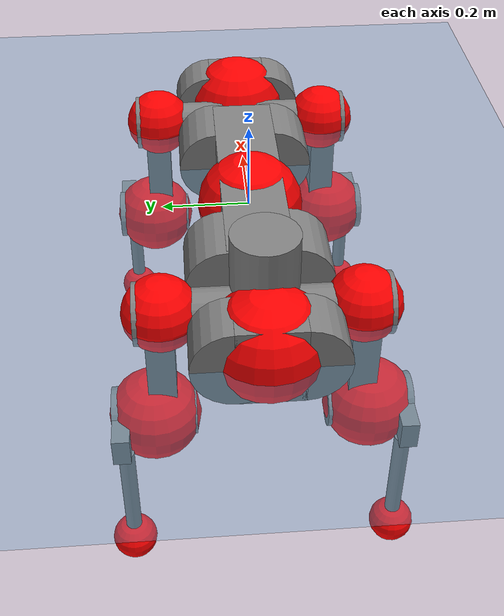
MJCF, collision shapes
<mujoco model="anymal_c">
  <compiler angle="radian" assetdir="assets" balanceinertia="true" inertiafromgeom="false"/>

  <option timestep="0.005" density="1.2" viscosity="2e-05"/>

  <size nkey="1"/>

  <visual>
    <quality shadowsize="8192"/>
    <map shadowclip="0.5"/>
  </visual>

  <default>
    <default class="/">
      <material specular="0" shininess="0.25"/>
      <geom contype="0" conaffinity="0" group="1" solref="-1000 -80"/>
      <site size="0.01 0.005 0.005" group="5"/>
      <general forcelimited="true" forcerange="-80 80" biastype="affine" gainprm="80" biasprm="0 -80 -2"/>
      <default class="anymal_c">
        <joint armature="0.01" damping="0.01" frictionloss="0.1"/>
        <default class="visual">
          <geom type="mesh" group="2"/>
          <default class="visual_zflip"/>
        </default>
        <default class="collision">
          <geom type="cylinder" group="3"/>
          <default class="foot">
            <geom size="0.03 0 0" type="sphere" condim="6" priority="1" friction="0.8 0.02 0.01" solimp="0.015 1 0.03"/>
          </default>
        </default>
      </default>
      <default class="reward_collision_sphere">
        <geom group="5" rgba="1 0 0 1"/>
      </default>
    </default>
  </default>

  <asset>
    <texture type="skybox" colorspace="auto" name="//unnamed_texture_0" builtin="gradient" rgb1="0.95 0.95 0.95" rgb2="0.95 0.95 0.95" width="100" height="600"/>
    <texture type="2d" colorspace="auto" name="texplane" builtin="checker" rgb1="0.345 0.575 0.748" rgb2="0.345 0.575 0.748" markrgb="1 1 1" width="512" height="512"/>
    <texture type="2d" colorspace="linear" name="base" file="base.png"/>
    <texture type="2d" colorspace="linear" name="top_shell" file="top_shell.png"/>
    <texture type="2d" colorspace="linear" name="bottom_shell" file="bottom_shell.png"/>
    <texture type="2d" colorspace="linear" name="remote" file="remote.png"/>
    <texture type="2d" colorspace="linear" name="hatch" file="hatch.png"/>
    <texture type="2d" colorspace="linear" name="handle" file="handle.png"/>
    <texture type="2d" colorspace="linear" name="face" file="face.png"/>
    <texture type="2d" colorspace="linear" name="battery" file="battery.png"/>
    <texture type="2d" colorspace="linear" name="lidar_cage" file="lidar_cage.png"/>
    <texture type="2d" colorspace="linear" name="depth_camera" file="depth_camera.png"/>
    <texture type="2d" colorspace="linear" name="wide_angle_camera" file="wide_angle_camera.png"/>
    <texture type="2d" colorspace="linear" name="lidar" file="lidar.png"/>
    <texture type="2d" colorspace="linear" name="drive" file="drive.png"/>
    <texture type="2d" colorspace="linear" name="hip_l" file="hip_l.png"/>
    <texture type="2d" colorspace="linear" name="shank_l" file="shank_l.png"/>
    <texture type="2d" colorspace="linear" name="foot" file="foot.png"/>
    <texture type="2d" colorspace="linear" name="thigh" file="thigh.png"/>
    <texture type="2d" colorspace="linear" name="shank_r" file="shank_r.png"/>
    <texture type="2d" colorspace="linear" name="hip_r" file="hip_r.png"/>
    <material name="MatPlane" class="/" texture="texplane" texuniform="true" texrepeat="2 2" specular="0.9" shininess="0.5"/>
    <material name="black_plastic" class="/" rgba="0.007 0.007 0.007 1"/>
    <material name="green" class="/" rgba="0.052 0.178 0.033 1"/>
    <material name="red" class="/" rgba="0.178 0.006 0.005 1"/>
    <material name="yellow" class="/" rgba="0.178 0.119 0.006 1"/>
    <material name="lwl" class="/" rgba="0.8 0.8 0.8 1"/>
    <material name="base" class="/" texture="base"/>
    <material name="top_shell" class="/" texture="top_shell"/>
    <material name="bottom_shell" class="/" texture="bottom_shell"/>
    <material name="hip_l" class="/" texture="hip_l"/>
    <material name="thigh" class="/" texture="thigh"/>
    <material name="shank_l" class="/" texture="shank_l"/>
    <material name="foot" class="/" texture="foot"/>
    <material name="hip_r" class="/" texture="hip_r"/>
    <material name="shank" class="/" texture="shank_r"/>
    <material name="hatch" class="/" texture="hatch"/>
    <material name="remote" class="/" texture="remote"/>
    <material name="handle" class="/" texture="handle"/>
    <material name="face" class="/" texture="face"/>
    <material name="depth_camera" class="/" texture="depth_camera"/>
    <material name="wide_angle_camera" class="/" texture="wide_angle_camera"/>
    <material name="battery" class="/" texture="battery"/>
    <material name="lidar_cage" class="/" texture="lidar_cage"/>
    <material name="lidar" class="/" texture="lidar"/>
    <material name="drive" class="/" texture="drive"/>
    <mesh name="base_0" class="/" file="base_0.obj"/>
    <mesh name="base_1" class="/" file="base_1.obj"/>
    <mesh name="base_2" class="/" file="base_2.obj"/>
    <mesh name="base_3" class="/" file="base_3.obj"/>
    <mesh name="base_4" class="/" file="base_4.obj"/>
    <mesh name="base_5" class="/" file="base_5.obj"/>
    <mesh name="top_shell" class="/" file="top_shell.obj"/>
    <mesh name="bottom_shell" class="/" file="bottom_shell.obj"/>
    <mesh name="remote" class="/" file="remote.obj"/>
    <mesh name="handle" class="/" file="handle.obj"/>
    <mesh name="face" class="/" file="face.obj"/>
    <mesh name="wide_angle_camera" class="/" file="wide_angle_camera.obj"/>
    <mesh name="depth_camera" class="/" file="depth_camera.obj"/>
    <mesh name="battery" class="/" file="battery.obj"/>
    <mesh name="lidar_cage" class="/" file="lidar_cage.obj"/>
    <mesh name="lidar" class="/" file="lidar.obj"/>
    <mesh name="drive" class="/" file="drive.obj"/>
    <mesh name="hip_l" class="/" file="hip_l.obj"/>
    <mesh name="thigh" class="/" file="thigh.obj"/>
    <mesh name="shank_l" class="/" file="shank_l.obj"/>
    <mesh name="foot" class="/" file="foot.obj"/>
    <mesh name="hip_r" class="/" file="hip_r.obj"/>
    <mesh name="hatch" class="/" file="hatch.obj"/>
    <mesh name="shank_r" class="/" file="shank_r.obj"/>
  </asset>

  <worldbody>
    <geom name="floor" class="/" size="100 100 0.125" type="plane" group="0" material="MatPlane"/>
    <light name="toplight_shadow" class="/" pos="0 0 5" dir="0.0990148 0.0990148 -0.990148" type="directional" ambient="0.04 0.04 0.04" diffuse="0.55 0.55 0.55" specular="0.12 0.12 0.12"/>
    <light name="toplight_fill" class="/" pos="0 0 5" dir="0.0990148 0.0990148 -0.990148" type="directional" castshadow="false" ambient="0.04 0.04 0.04" diffuse="0.3 0.3 0.3" specular="0.08 0.08 0.08"/>
    <body name="trunk" childclass="anymal_c" pos="-0.000524241 -0.00264114 -0.000260968" quat="0.999999 0.00019948 -0.00110752 -0.000703966">
      <inertial pos="8.99891e-05 -0.00211799 0.0528178" quat="0.492489 0.50725 0.498077 0.502067" mass="20.2665" diaginertia="0.775138 0.540443 0.248604"/>
      <joint name="//unnamed_joint_0" type="free" armature="0" damping="0" frictionloss="0"/>
      <geom name="//unnamed_geom_1" class="visual" material="green" mesh="base_0"/>
      <geom name="//unnamed_geom_2" class="visual" material="yellow" mesh="base_1"/>
      <geom name="//unnamed_geom_3" class="visual" material="red" mesh="base_2"/>
      <geom name="//unnamed_geom_4" class="visual" material="black_plastic" mesh="base_3"/>
      <geom name="//unnamed_geom_5" class="visual" material="lwl" mesh="base_4"/>
      <geom name="//unnamed_geom_6" class="visual" material="base" mesh="base_5"/>
      <geom name="trunk_1" class="collision" size="0.294629 0.0711173 0.0914365" type="box"/>
      <geom name="trunk_2" class="collision" size="0.0914365 0.0736572" pos="0.228305 0.0681129 0" quat="0.707107 0 0.707107 0"/>
      <geom name="trunk_3" class="collision" size="0.0914365 0.0736572" pos="-0.228305 0.0681129 0" quat="0.707107 0 0.707107 0"/>
      <geom name="trunk_4" class="collision" size="0.0914365 0.0736572" pos="0.228305 -0.0681129 0" quat="0.707107 0 0.707107 0"/>
      <geom name="trunk_5" class="collision" size="0.0914365 0.0736572" pos="-0.228305 -0.0681129 0" quat="0.707107 0 0.707107 0"/>
      <geom name="//unnamed_geom_12" class="visual" material="top_shell" mesh="top_shell"/>
      <geom name="//unnamed_geom_13" class="visual" material="bottom_shell" mesh="bottom_shell"/>
      <geom name="//unnamed_geom_14" class="visual" material="remote" mesh="remote"/>
      <geom name="//unnamed_geom_15" class="visual" material="handle" mesh="handle"/>
      <geom name="//unnamed_geom_16" class="visual" pos="0.435092 0 0" quat="1 0 0 0" material="face" mesh="face"/>
      <geom name="trunk_6" class="collision" size="0.0558779 0.0711173 0.0914365" pos="0.492824 0 0" type="box"/>
      <geom name="//unnamed_geom_18" class="collision" size="0.0914365 0.0558779" pos="0.492824 0.0681129 0" quat="0.707107 0 0.707107 0"/>
      <geom name="//unnamed_geom_19" class="collision" size="0.0914365 0.0558779" pos="0.492824 -0.0681129 0" quat="0.707107 0 0.707107 0"/>
      <geom name="//unnamed_geom_20" class="visual" pos="0.484583 0 -0.0297485" quat="0.965926 0 0.258819 0" material="depth_camera" mesh="depth_camera"/>
      <geom name="//unnamed_geom_21" class="visual" pos="0.538485 0 0.0153467" material="wide_angle_camera" mesh="wide_angle_camera"/>
      <geom name="//unnamed_geom_22" class="visual_zflip" pos="-0.435092 0 0" quat="0 0 0 1" material="face" mesh="face"/>
      <geom name="trunk_7" class="collision" size="0.0558779 0.0711173 0.0914365" pos="-0.492824 0 0" quat="0 0 0 1" type="box"/>
      <geom name="//unnamed_geom_24" class="collision" size="0.0914365 0.0558779" pos="-0.492824 -0.0681129 0" quat="0 -0.707107 0 0.707107"/>
      <geom name="//unnamed_geom_25" class="collision" size="0.0914365 0.0558779" pos="-0.492824 0.0681129 0" quat="0 -0.707107 0 0.707107"/>
      <geom name="//unnamed_geom_26" class="visual" pos="-0.484583 0 -0.0297485" quat="0 -0.258819 0 0.965926" material="depth_camera" mesh="depth_camera"/>
      <geom name="//unnamed_geom_27" class="visual_zflip" pos="-0.538485 0 0.0153467" quat="0 0 0 1" material="wide_angle_camera" mesh="wide_angle_camera"/>
      <geom name="//unnamed_geom_28" class="visual" material="battery" mesh="battery"/>
      <geom name="//unnamed_geom_29" class="visual" pos="0 0.073392 0.0299673" quat="0.683013 -0.183013 0.183013 0.683013" material="depth_camera" mesh="depth_camera"/>
      <geom name="//unnamed_geom_30" class="visual" pos="0 -0.073392 0.0299673" quat="0.683013 0.183013 0.183013 -0.683013" material="depth_camera" mesh="depth_camera"/>
      <geom name="//unnamed_geom_31" class="visual" pos="-0.382083 0 0.0753496" quat="1 0 0 0" material="lidar_cage" mesh="lidar_cage"/>
      <geom name="trunk_8" class="collision" size="0.0711173 0.0609577" pos="-0.382083 0 0.136859"/>
      <geom name="//unnamed_geom_33" class="visual" pos="-0.382083 -3.01087e-05 0.145778" quat="0.707107 0 0 -0.707107" material="lidar" mesh="lidar"/>
      <geom name="//unnamed_geom_34" class="visual" pos="0.314798 0.101215 -8.99138e-10" quat="0.258819 0.965926 0 0" material="drive" mesh="drive"/>
      <geom name="//unnamed_geom_35" class="visual" pos="0.314798 -0.101215 8.99138e-10" quat="0.258819 -0.965926 0 0" material="drive" mesh="drive"/>
      <geom name="//unnamed_geom_36" class="visual" pos="-0.314798 0.101215 8.99138e-10" quat="0 0 0.965926 -0.258819" material="drive" mesh="drive"/>
      <geom name="//unnamed_geom_37" class="visual" pos="-0.314798 -0.101215 -8.99138e-10" quat="0 0 -0.965926 -0.258819" material="drive" mesh="drive"/>
      <geom name="//unnamed_geom_38" class="visual" pos="0.121763 0 0.074837" quat="1 0 0 0" material="hatch" mesh="hatch"/>
      <geom name="//unnamed_geom_39" class="reward_collision_sphere" size="0.121915"/>
      <geom name="//unnamed_geom_40" class="reward_collision_sphere" size="0.121915" pos="0.472355 0 0"/>
      <geom name="//unnamed_geom_41" class="reward_collision_sphere" size="0.121915" pos="-0.472355 0 0"/>
      <site name="imu" pos="0.265955 0.0060411 0.0454436" size="0.0101596"/>
      <camera name="track" pos="0 -1.94608 0" quat="0.707107 0.707107 0 0" mode="trackcom"/>
      <camera name="ego_camera" pos="0.472355 0 -0.0410066" quat="-0.5 -0.5 0.5 0.5"/>
      <body name="LF_HIP" pos="0.31399 0.101565 0.000662254" quat="0.258559 0.965996 -0.000217911 4.92267e-05">
        <inertial pos="0.0594144 -0.0174333 -0.00823273" quat="-0.129811 0.712443 -0.141315 0.674985" mass="2.90089" diaginertia="0.00744689 0.00416539 0.00370196"/>
        <joint name="LF_HAA" pos="0 0 0" axis="0.99997 -0.00520633 0.00570307" stiffness="0.00564048" range="-0.758397 0.508428" armature="0.0101961" damping="0.00926915" frictionloss="0.0989352"/>
        <geom name="//unnamed_geom_42" class="visual" pos="0 -5.28922e-05 8.6875e-06" quat="0.258819 -0.965926 0 0" material="hip_l" mesh="hip_l"/>
        <geom name="//unnamed_geom_43" class="visual" pos="0.0628757 -0.0751968 -0.0438004" quat="0.183013 -0.683013 0.683013 0.183013" material="drive" mesh="drive"/>
        <geom name="//unnamed_geom_44" class="collision" size="0.0507981 0.0711173" pos="0.0628757 -0.0116374 -0.00707876" quat="-0.353553 -0.612372 0.612372 -0.353553"/>
        <body name="LF_THIGH" pos="0.0659585 -0.0689759 -0.0426057" quat="0.182647 -0.683496 0.682487 0.183533">
          <inertial pos="0.031985 0.0020357 -0.250802" quat="0.993006 -4.6834e-05 -0.0828605 0.0841033" mass="3.32103" diaginertia="0.0374786 0.026957 0.00475543"/>
          <joint name="LF_HFE" pos="0 0 0" axis="0.999901 0.0140405 0.00106015" stiffness="0.00763172" range="-3.19849 3.08917" armature="0.0111794" damping="0.00205515" frictionloss="0.0905444"/>
          <geom name="//unnamed_geom_45" class="visual" pos="0.00152478 2.4027e-06 0" quat="0.707107 0 0 -0.707107" material="thigh" mesh="thigh"/>
          <geom name="//unnamed_geom_46" class="collision" size="0.0660375 0.0406384" pos="0.0419871 0 0" quat="0.5 0.5 -0.5 -0.5"/>
          <geom name="//unnamed_geom_47" class="collision" size="0.0380985 0.0304788 0.14357" pos="0.0314903 0 -0.14487" quat="0.707107 0 0 -0.707107" type="box"/>
          <geom name="//unnamed_geom_48" class="visual" pos="0.105283 0 -0.292172" quat="1 0 0 0" material="drive" mesh="drive"/>
          <geom name="//unnamed_geom_49" class="collision" size="0.0507981 0.0711173" pos="0.0318052 0 -0.292172" quat="0.707107 0 0.707107 0"/>
          <geom name="//unnamed_geom_50" class="reward_collision_sphere" size="0.0812769" pos="0.026242 0 0"/>
          <body name="LF_SHANK" pos="0.104786 -0.000769786 -0.290231" quat="1 2.59488e-05 0.00047561 7.35474e-05">
            <inertial pos="0.00306347 -0.0620251 -0.0855412" quat="0.992968 -0.116271 0.000781965 -0.0222645" mass="0.601915" diaginertia="0.0125229 0.00804796 0.00124211"/>
            <joint name="LF_KFE" pos="0 0 0" axis="0.999998 -0.00120106 0.00142394" stiffness="0.00492006" range="-3.10039 3.19613" armature="0.00899581" damping="0" frictionloss="0.103791"/>
            <geom name="//unnamed_geom_51" class="visual" pos="0.000497198 0.00265108 0" quat="0.707107 0 0 -0.707107" material="shank_l" mesh="shank_l"/>
            <geom name="LF_kfe_act" class="collision" size="0.0609577 0.0203192" pos="0.0209936 0 0" quat="0.5 0.5 -0.5 -0.5"/>
            <geom name="//unnamed_geom_53" class="collision" size="0.0584167 0.0342887 0.0193033" pos="0.0209936 -0.0559489 0" quat="0.5 0.5 -0.5 -0.5" type="box"/>
            <geom name="//unnamed_geom_54" class="visual" pos="0.0136982 -0.0847246 -0.346475" quat="0.382683 0 0 -0.92388" material="foot" mesh="foot"/>
            <geom name="LF_calf" class="collision" size="0.0177793 0.143507" pos="0.0136983 -0.0855789 -0.173237" quat="0.707107 0 0 -0.707107"/>
            <geom name="LF_foot" class="foot" size="0.0296886" pos="0.0136983 -0.0855789 -0.323409" quat="0.707107 0 0 -0.707107"/>
            <geom name="//unnamed_geom_57" class="reward_collision_sphere" size="0.101596" pos="-0.0524839 0 0"/>
            <geom name="//unnamed_geom_58" class="reward_collision_sphere" size="0.0507981" pos="0.0136983 -0.0855789 -0.323409"/>
            <site name="LF_foot" class="foot" pos="0.0136983 -0.0855789 -0.323409" quat="0.707107 0 0 -0.707107" size="0.0101596"/>
          </body>
        </body>
      </body>
      <body name="RF_HIP" pos="0.313025 -0.103459 -0.000774771" quat="0.258817 -0.965926 5.06509e-06 -1.349e-06">
        <inertial pos="0.0606689 0.0165502 -0.00999867" quat="0.130383 0.683628 0.137815 0.704741" mass="2.89819" diaginertia="0.00725334 0.00429504 0.00377808"/>
        <joint name="RF_HAA" pos="0 0 0" axis="0.999912 0.00621428 -0.0117007" range="-0.508449 0.776962" armature="0.00938905" damping="0.00346591" frictionloss="0.101574"/>
        <geom name="//unnamed_geom_59" class="visual" pos="0 5.28918e-05 8.68748e-06" quat="0.258819 0.965926 0 0" material="hip_r" mesh="hip_r"/>
        <geom name="//unnamed_geom_60" class="visual" pos="0.0628757 0.0751968 -0.0438004" quat="0.183013 0.683013 0.683013 -0.183013" material="drive" mesh="drive"/>
        <geom name="//unnamed_geom_61" class="collision" size="0.0507981 0.0711173" pos="0.0628757 0.0116374 -0.00707876" quat="-0.353553 0.612372 0.612372 0.353553"/>
        <body name="RF_THIGH" pos="0.0620848 0.0708396 -0.0448027" quat="0.183118 0.682798 0.683198 -0.183018">
          <inertial pos="0.0343652 -0.00268066 -0.249272" quat="0.99297 -0.00808885 -0.0792063 0.0875881" mass="3.23557" diaginertia="0.0374262 0.0261458 0.00475191"/>
          <joint name="RF_HFE" pos="0 0 0" axis="0.999965 0.00743021 0.00396002" stiffness="0.00868538" range="-3.14958 3.15269" armature="0.00892729" damping="0.0242423" frictionloss="0.0890241"/>
          <geom name="//unnamed_geom_62" class="visual" pos="0.00152478 2.4027e-06 0" quat="0.707107 0 0 -0.707107" material="thigh" mesh="thigh"/>
          <geom name="//unnamed_geom_63" class="collision" size="0.0660375 0.0406384" pos="0.0419871 0 0" quat="0.5 0.5 0.5 0.5"/>
          <geom name="//unnamed_geom_64" class="collision" size="0.0380985 0.0304788 0.14357" pos="0.0314903 0 -0.14487" quat="0.707107 0 0 0.707107" type="box"/>
          <geom name="//unnamed_geom_65" class="visual" pos="0.105283 0 -0.292172" quat="1 0 0 0" material="drive" mesh="drive"/>
          <geom name="//unnamed_geom_66" class="collision" size="0.0507981 0.0711173" pos="0.0318052 0 -0.292172" quat="0.707107 0 0.707107 0"/>
          <geom name="//unnamed_geom_67" class="reward_collision_sphere" size="0.0812769" pos="0.026242 0 0"/>
          <body name="RF_SHANK" pos="0.105031 0.00203893 -0.290644" quat="1 -0.00023686 0.000240659 -0.000120101">
            <inertial pos="0.00346252 0.062231 -0.0827284" quat="0.993182 0.11356 -0.00698818 0.0253937" mass="0.633515" diaginertia="0.0131133 0.00854563 0.00126036"/>
            <joint name="RF_KFE" pos="0 0 0" axis="0.999993 0.000773236 -0.00366444" range="-3.1136 3.13342" armature="0.0106851" damping="0" frictionloss="0.0974139"/>
            <geom name="//unnamed_geom_68" class="visual" pos="0.000497195 -0.00265108 0" quat="0.707107 0 0 0.707107" material="shank" mesh="shank_r"/>
            <geom name="RF_kfe_act" class="collision" size="0.0609577 0.0203192" pos="0.0209936 0 0" quat="0.5 0.5 0.5 0.5"/>
            <geom name="//unnamed_geom_70" class="collision" size="0.0584167 0.0342887 0.0193033" pos="0.0209936 0.0559489 0" quat="0.5 0.5 0.5 0.5" type="box"/>
            <geom name="//unnamed_geom_71" class="visual" pos="0.0136984 0.0847246 -0.346475" quat="0.382683 0 0 0.92388" material="foot" mesh="foot"/>
            <geom name="RF_calf" class="collision" size="0.0177793 0.143507" pos="0.0136983 0.0855789 -0.173237" quat="0.707107 0 0 0.707107"/>
            <geom name="RF_foot" class="foot" size="0.0288423" pos="0.0136983 0.0855789 -0.323409" quat="0.707107 0 0 0.707107"/>
            <geom name="//unnamed_geom_74" class="reward_collision_sphere" size="0.101596" pos="-0.0524839 0 0"/>
            <geom name="//unnamed_geom_75" class="reward_collision_sphere" size="0.0507981" pos="0.0136983 0.0855789 -0.323409"/>
            <site name="RF_foot" class="foot" pos="0.0136983 0.0855789 -0.323409" quat="0.707107 0 0 0.707107" size="0.0101596"/>
          </body>
        </body>
      </body>
      <body name="LH_HIP" pos="-0.314355 0.103628 0.00339158" quat="5.12452e-05 -6.70423e-05 0.966016 -0.258482">
        <inertial pos="0.0588304 0.0152107 -0.00620642" quat="0.137563 0.67835 0.128684 0.710182" mass="2.80992" diaginertia="0.00744487 0.00413881 0.00378069"/>
        <joint name="LH_HAA" pos="0 0 0" axis="0.999994 -0.00143263 -0.00305791" stiffness="0.00880272" range="-0.43793 0.711373" armature="0.0104736" damping="0.0102432" frictionloss="0.115953"/>
        <geom name="//unnamed_geom_76" class="visual" pos="0 5.28918e-05 8.68748e-06" quat="-0.258819 -0.965926 0 0" material="hip_r" mesh="hip_r"/>
        <geom name="//unnamed_geom_77" class="visual" pos="0.0628757 0.0751968 -0.0438004" quat="0.183013 0.683013 0.683013 -0.183013" material="drive" mesh="drive"/>
        <geom name="//unnamed_geom_78" class="collision" size="0.0507981 0.0711173" pos="0.0628757 0.0116374 -0.00707876" quat="-0.353553 0.612372 0.612372 0.353553"/>
        <body name="LH_THIGH" pos="0.0622579 0.0693093 -0.0427782" quat="0.183562 0.682779 0.682792 -0.184154">
          <inertial pos="0.0323748 0.00166043 -0.251012" quat="0.991232 -0.00416578 -0.0834837 0.102336" mass="3.13329" diaginertia="0.0375364 0.0268209 0.0048988"/>
          <joint name="LH_HFE" pos="0 0 0" axis="0.999957 0.00806042 0.00455959" stiffness="0.00138893" range="-3.12013 3.14311" armature="0.011484" damping="0.0241773" frictionloss="0.0904001"/>
          <geom name="//unnamed_geom_79" class="visual" pos="0.00152478 2.4027e-06 0" quat="0.707107 0 0 -0.707107" material="thigh" mesh="thigh"/>
          <geom name="//unnamed_geom_80" class="collision" size="0.0660375 0.0406384" pos="0.0419871 0 0" quat="0.5 0.5 -0.5 -0.5"/>
          <geom name="//unnamed_geom_81" class="collision" size="0.0380985 0.0304788 0.14357" pos="0.0314903 0 -0.14487" quat="0.707107 0 0 -0.707107" type="box"/>
          <geom name="//unnamed_geom_82" class="visual" pos="0.105283 0 -0.292172" quat="1 0 0 0" material="drive" mesh="drive"/>
          <geom name="//unnamed_geom_83" class="collision" size="0.0507981 0.0711173" pos="0.0318052 0 -0.292172" quat="0.707107 0 0.707107 0"/>
          <geom name="//unnamed_geom_84" class="reward_collision_sphere" size="0.0812769" pos="0.026242 0 0"/>
          <body name="LH_SHANK" pos="0.104153 0.00134987 -0.289779" quat="1 -0.000230771 0.000717179 -0.000260732">
            <inertial pos="0.00611055 0.0623126 -0.081698" quat="0.993072 0.115213 -0.00225107 0.0229919" mass="0.607599" diaginertia="0.0123482 0.00767988 0.00120729"/>
            <joint name="LH_KFE" pos="0 0 0" axis="0.999976 -0.00196512 -0.00660035" stiffness="0.00916555" range="-3.09919 3.14459" armature="0.0111615" damping="0.0216057" frictionloss="0.0886154"/>
            <geom name="//unnamed_geom_85" class="visual" pos="0.000497195 -0.00265108 0" quat="-0.707107 0 0 -0.707107" material="shank" mesh="shank_r"/>
            <geom name="LH_kfe_act" class="collision" size="0.0609577 0.0203192" pos="0.0209936 0 0" quat="0.5 0.5 -0.5 -0.5"/>
            <geom name="//unnamed_geom_87" class="collision" size="0.0584167 0.0342887 0.0193033" pos="0.0209936 0.0559489 0" quat="0.5 0.5 -0.5 -0.5" type="box"/>
            <geom name="//unnamed_geom_88" class="visual" pos="0.0136984 0.0847246 -0.346475" quat="-0.382683 0 0 -0.92388" material="foot" mesh="foot"/>
            <geom name="LH_calf" class="collision" size="0.0177793 0.143507" pos="0.0136983 0.0855789 -0.173237" quat="0.707107 0 0 -0.707107"/>
            <geom name="LH_foot" class="foot" size="0.0302615" pos="0.0136983 0.0855789 -0.323409" quat="0.707107 0 0 -0.707107"/>
            <geom name="//unnamed_geom_91" class="reward_collision_sphere" size="0.101596" pos="-0.0524839 0 0"/>
            <geom name="//unnamed_geom_92" class="reward_collision_sphere" size="0.0507981" pos="0.0136983 0.0855789 -0.323409"/>
            <site name="LH_foot" class="foot" pos="0.0136983 0.0855789 -0.323409" quat="0.707107 0 0 -0.707107" size="0.0101596"/>
          </body>
        </body>
      </body>
      <body name="RH_HIP" pos="-0.316778 -0.10029 0.00158102" quat="-0.000705775 -0.000693524 -0.965912 -0.258867">
        <inertial pos="0.0591042 -0.0152011 -0.00755705" quat="-0.130404 0.709077 -0.134492 0.679791" mass="2.85348" diaginertia="0.00730428 0.00420268 0.00371536"/>
        <joint name="RH_HAA" pos="0 0 0" axis="0.999994 0.00227409 0.00263924" stiffness="0.00920765" range="-0.709167 0.54672" armature="0.0114656" damping="0.0140944" frictionloss="0.114055"/>
        <geom name="//unnamed_geom_93" class="visual" pos="0 -5.28922e-05 8.6875e-06" quat="-0.258819 0.965926 0 0" material="hip_l" mesh="hip_l"/>
        <geom name="//unnamed_geom_94" class="visual" pos="0.0628757 -0.0751968 -0.0438004" quat="-0.183013 0.683013 -0.683013 -0.183013" material="drive" mesh="drive"/>
        <geom name="//unnamed_geom_95" class="collision" size="0.0507981 0.0711173" pos="0.0628757 -0.0116374 -0.00707876" quat="0.353553 0.612372 -0.612372 0.353553"/>
        <body name="RH_THIGH" pos="0.0600342 -0.0672309 -0.0433939" quat="-0.183131 0.682683 -0.68332 -0.182978">
          <inertial pos="0.0330213 -0.00287124 -0.251151" quat="0.992693 -0.00187999 -0.0833727 0.0872142" mass="3.20541" diaginertia="0.0387822 0.0258912 0.00455445"/>
          <joint name="RH_HFE" pos="0 0 0" axis="0.999991 0.00419045 1.42251e-05" stiffness="0.0108434" range="-3.15255 3.17907" armature="0.00904119" damping="0.0218638" frictionloss="0.104927"/>
          <geom name="//unnamed_geom_96" class="visual" pos="0.00152478 2.4027e-06 0" quat="0.707107 0 0 -0.707107" material="thigh" mesh="thigh"/>
          <geom name="//unnamed_geom_97" class="collision" size="0.0660375 0.0406384" pos="0.0419871 0 0" quat="0.5 0.5 0.5 0.5"/>
          <geom name="//unnamed_geom_98" class="collision" size="0.0380985 0.0304788 0.14357" pos="0.0314903 0 -0.14487" quat="0.707107 0 0 0.707107" type="box"/>
          <geom name="//unnamed_geom_99" class="visual" pos="0.105283 0 -0.292172" quat="1 0 0 0" material="drive" mesh="drive"/>
          <geom name="//unnamed_geom_100" class="collision" size="0.0507981 0.0711173" pos="0.0318052 0 -0.292172" quat="0.707107 0 0.707107 0"/>
          <geom name="//unnamed_geom_101" class="reward_collision_sphere" size="0.0812769" pos="0.026242 0 0"/>
          <body name="RH_SHANK" pos="0.10708 0.00105134 -0.290917" quat="1 1.68852e-05 0.000145474 -5.64281e-05">
            <inertial pos="0.00359514 -0.0605551 -0.0830649" quat="0.993016 -0.11498 -0.00126236 -0.0263944" mass="0.634807" diaginertia="0.0129038 0.00820594 0.00127687"/>
            <joint name="RH_KFE" pos="0 0 0" axis="0.999966 -0.00356295 0.00749524" range="-3.07882 3.16948" armature="0.0105787" damping="0.0150854" frictionloss="0.112533"/>
            <geom name="//unnamed_geom_102" class="visual" pos="0.000497198 0.00265108 0" quat="0.707107 0 0 -0.707107" material="shank_l" mesh="shank_l"/>
            <geom name="RH_kfe_act" class="collision" size="0.0609577 0.0203192" pos="0.0209936 0 0" quat="0.5 0.5 0.5 0.5"/>
            <geom name="//unnamed_geom_104" class="collision" size="0.0584167 0.0342887 0.0193033" pos="0.0209936 -0.0559489 0" quat="0.5 0.5 0.5 0.5" type="box"/>
            <geom name="//unnamed_geom_105" class="visual" pos="0.0136982 -0.0847246 -0.346475" quat="0.382683 0 0 -0.92388" material="foot" mesh="foot"/>
            <geom name="RH_calf" class="collision" size="0.0177793 0.143507" pos="0.0136983 -0.0855789 -0.173237" quat="0.707107 0 0 0.707107"/>
            <geom name="RH_foot" class="foot" size="0.0315706" pos="0.0136983 -0.0855789 -0.323409" quat="0.707107 0 0 0.707107"/>
            <geom name="//unnamed_geom_108" class="reward_collision_sphere" size="0.101596" pos="-0.0524839 0 0"/>
            <geom name="//unnamed_geom_109" class="reward_collision_sphere" size="0.0507981" pos="0.0136983 -0.0855789 -0.323409"/>
            <site name="RH_foot" class="foot" pos="0.0136983 -0.0855789 -0.323409" quat="0.707107 0 0 0.707107" size="0.0101596"/>
          </body>
        </body>
      </body>
    </body>
  </worldbody>

  <contact>
    <pair class="/" geom1="floor" geom2="LF_foot" name="//unnamed_contact_0"/>
    <pair class="/" geom1="floor" geom2="RF_foot" name="//unnamed_contact_1"/>
    <pair class="/" geom1="floor" geom2="LH_foot" name="//unnamed_contact_2"/>
    <pair class="/" geom1="floor" geom2="RH_foot" name="//unnamed_contact_3"/>
  </contact>

  <actuator>
    <general name="LF_HAA" class="/" joint="LF_HAA" forcerange="-88.1512 88.1512" gainprm="81.3069" biasprm="0 -81.3069 -2.12778"/>
    <general name="LF_HFE" class="/" joint="LF_HFE" forcerange="-81.8568 81.8568" gainprm="81.3069" biasprm="0 -81.3069 -2.12778"/>
    <general name="LF_KFE" class="/" joint="LF_KFE" forcerange="-78.7312 78.7312" gainprm="81.3069" biasprm="0 -81.3069 -2.12778"/>
    <general name="RF_HAA" class="/" joint="RF_HAA" forcerange="-76.2229 76.2229" gainprm="81.3069" biasprm="0 -81.3069 -2.12778"/>
    <general name="RF_HFE" class="/" joint="RF_HFE" forcerange="-82.0668 82.0668" gainprm="81.3069" biasprm="0 -81.3069 -2.12778"/>
    <general name="RF_KFE" class="/" joint="RF_KFE" forcerange="-73.0089 73.0089" gainprm="81.3069" biasprm="0 -81.3069 -2.12778"/>
    <general name="LH_HAA" class="/" joint="LH_HAA" forcerange="-81.8339 81.8339" gainprm="81.3069" biasprm="0 -81.3069 -2.12778"/>
    <general name="LH_HFE" class="/" joint="LH_HFE" forcerange="-82.1447 82.1447" gainprm="81.3069" biasprm="0 -81.3069 -2.12778"/>
    <general name="LH_KFE" class="/" joint="LH_KFE" forcerange="-83.7697 83.7697" gainprm="81.3069" biasprm="0 -81.3069 -2.12778"/>
    <general name="RH_HAA" class="/" joint="RH_HAA" forcerange="-77.0992 77.0992" gainprm="81.3069" biasprm="0 -81.3069 -2.12778"/>
    <general name="RH_HFE" class="/" joint="RH_HFE" forcerange="-84.6901 84.6901" gainprm="81.3069" biasprm="0 -81.3069 -2.12778"/>
    <general name="RH_KFE" class="/" joint="RH_KFE" forcerange="-89.5476 89.5476" gainprm="81.3069" biasprm="0 -81.3069 -2.12778"/>
  </actuator>

  <sensor>
    <gyro site="imu" name="imu_angular_velocity"/>
    <velocimeter site="imu" name="imu_linear_velocity"/>
    <framelinvel objtype="site" objname="LF_foot" name="LF_foot_global_linear_velocity"/>
    <framelinvel objtype="site" objname="RF_foot" name="RF_foot_global_linear_velocity"/>
    <framelinvel objtype="site" objname="LH_foot" name="LH_foot_global_linear_velocity"/>
    <framelinvel objtype="site" objname="RH_foot" name="RH_foot_global_linear_velocity"/>
  </sensor>

  <keyframe>
    <key name="home" qpos="0 0 0.55 1 0 0 0 0 0.4 -0.8 0 -0.4 0.8 0 -0.4 0.8 0 0.4 -0.8"/>
  </keyframe>
</mujoco>
